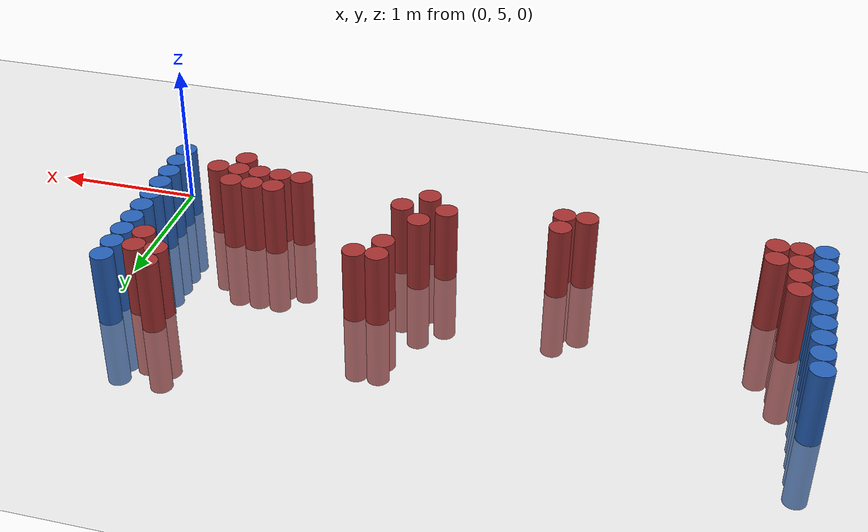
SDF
<sdf version="1.6">
 <world name="default">
  <model name="ground_plane">
   <static>1</static>
   <link name="link">
    <collision name="collision">
     <geometry><plane><normal>0 0 1</normal><size>100 100</size></plane></geometry>
     <surface><friction><ode><mu>100</mu><mu2>50</mu2></ode></friction></surface>
    </collision>
    <visual name="visual">
     <cast_shadows>0</cast_shadows>
     <geometry><plane><normal>0 0 1</normal><size>100 100</size></plane></geometry>
     <material>
      <script><uri>file://media/materials/scripts/gazebo.material</uri><name>Gazebo/Grey</name></script>
     </material>
    </visual>
   </link>
  </model>
  <model name="unit_cylinder_97">
   <static>1</static>
   <pose>-4.425000 5.325000 0.000000 0.000000 0.000000 0.000000</pose>
   <link name="link">
    <inertial>
     <mass>1</mass>
     <inertia><ixx>0.145833</ixx><ixy>0</ixy><ixz>0</ixz><iyy>0.145833</iyy><iyz>0</iyz><izz>0.125</izz></inertia>
    </inertial>
    <collision name="collision">
     <geometry><cylinder><radius>0.075000</radius><length>1</length></cylinder></geometry>
    </collision>
    <visual name="visual">
     <geometry><cylinder><radius>0.075000</radius><length>1</length></cylinder></geometry>
     <material>
      <ambient>0.152000 0.379000 0.720000 1</ambient>
      <diffuse>0.152000 0.379000 0.720000 1</diffuse>
     </material>
     <material>
      <script><name>Gazebo/Grey</name><uri>file://media/materials/scripts/gazebo.material</uri></script>
     </material>
    </visual>
   </link>
  </model>
  <model name="unit_cylinder_98">
   <static>1</static>
   <pose>-4.425000 5.475000 0.000000 0.000000 0.000000 0.000000</pose>
   <link name="link">
    <inertial>
     <mass>1</mass>
     <inertia><ixx>0.145833</ixx><ixy>0</ixy><ixz>0</ixz><iyy>0.145833</iyy><iyz>0</iyz><izz>0.125</izz></inertia>
    </inertial>
    <collision name="collision">
     <geometry><cylinder><radius>0.075000</radius><length>1</length></cylinder></geometry>
    </collision>
    <visual name="visual">
     <geometry><cylinder><radius>0.075000</radius><length>1</length></cylinder></geometry>
     <material>
      <ambient>0.152000 0.379000 0.720000 1</ambient>
      <diffuse>0.152000 0.379000 0.720000 1</diffuse>
     </material>
     <material>
      <script><name>Gazebo/Grey</name><uri>file://media/materials/scripts/gazebo.material</uri></script>
     </material>
    </visual>
   </link>
  </model>
  <model name="unit_cylinder_99">
   <static>1</static>
   <pose>-4.425000 5.625000 0.000000 0.000000 0.000000 0.000000</pose>
   <link name="link">
    <inertial>
     <mass>1</mass>
     <inertia><ixx>0.145833</ixx><ixy>0</ixy><ixz>0</ixz><iyy>0.145833</iyy><iyz>0</iyz><izz>0.125</izz></inertia>
    </inertial>
    <collision name="collision">
     <geometry><cylinder><radius>0.075000</radius><length>1</length></cylinder></geometry>
    </collision>
    <visual name="visual">
     <geometry><cylinder><radius>0.075000</radius><length>1</length></cylinder></geometry>
     <material>
      <ambient>0.152000 0.379000 0.720000 1</ambient>
      <diffuse>0.152000 0.379000 0.720000 1</diffuse>
     </material>
     <material>
      <script><name>Gazebo/Grey</name><uri>file://media/materials/scripts/gazebo.material</uri></script>
     </material>
    </visual>
   </link>
  </model>
  <model name="unit_cylinder_100">
   <static>1</static>
   <pose>-4.425000 5.775000 0.000000 0.000000 0.000000 0.000000</pose>
   <link name="link">
    <inertial>
     <mass>1</mass>
     <inertia><ixx>0.145833</ixx><ixy>0</ixy><ixz>0</ixz><iyy>0.145833</iyy><iyz>0</iyz><izz>0.125</izz></inertia>
    </inertial>
    <collision name="collision">
     <geometry><cylinder><radius>0.075000</radius><length>1</length></cylinder></geometry>
    </collision>
    <visual name="visual">
     <geometry><cylinder><radius>0.075000</radius><length>1</length></cylinder></geometry>
     <material>
      <ambient>0.152000 0.379000 0.720000 1</ambient>
      <diffuse>0.152000 0.379000 0.720000 1</diffuse>
     </material>
     <material>
      <script><name>Gazebo/Grey</name><uri>file://media/materials/scripts/gazebo.material</uri></script>
     </material>
    </visual>
   </link>
  </model>
  <model name="unit_cylinder_101">
   <static>1</static>
   <pose>-4.425000 5.925000 0.000000 0.000000 0.000000 0.000000</pose>
   <link name="link">
    <inertial>
     <mass>1</mass>
     <inertia><ixx>0.145833</ixx><ixy>0</ixy><ixz>0</ixz><iyy>0.145833</iyy><iyz>0</iyz><izz>0.125</izz></inertia>
    </inertial>
    <collision name="collision">
     <geometry><cylinder><radius>0.075000</radius><length>1</length></cylinder></geometry>
    </collision>
    <visual name="visual">
     <geometry><cylinder><radius>0.075000</radius><length>1</length></cylinder></geometry>
     <material>
      <ambient>0.152000 0.379000 0.720000 1</ambient>
      <diffuse>0.152000 0.379000 0.720000 1</diffuse>
     </material>
     <material>
      <script><name>Gazebo/Grey</name><uri>file://media/materials/scripts/gazebo.material</uri></script>
     </material>
    </visual>
   </link>
  </model>
  <model name="unit_cylinder_102">
   <static>1</static>
   <pose>-4.425000 6.075000 0.000000 0.000000 0.000000 0.000000</pose>
   <link name="link">
    <inertial>
     <mass>1</mass>
     <inertia><ixx>0.145833</ixx><ixy>0</ixy><ixz>0</ixz><iyy>0.145833</iyy><iyz>0</iyz><izz>0.125</izz></inertia>
    </inertial>
    <collision name="collision">
     <geometry><cylinder><radius>0.075000</radius><length>1</length></cylinder></geometry>
    </collision>
    <visual name="visual">
     <geometry><cylinder><radius>0.075000</radius><length>1</length></cylinder></geometry>
     <material>
      <ambient>0.152000 0.379000 0.720000 1</ambient>
      <diffuse>0.152000 0.379000 0.720000 1</diffuse>
     </material>
     <material>
      <script><name>Gazebo/Grey</name><uri>file://media/materials/scripts/gazebo.material</uri></script>
     </material>
    </visual>
   </link>
  </model>
  <model name="unit_cylinder_103">
   <static>1</static>
   <pose>-4.425000 6.225000 0.000000 0.000000 0.000000 0.000000</pose>
   <link name="link">
    <inertial>
     <mass>1</mass>
     <inertia><ixx>0.145833</ixx><ixy>0</ixy><ixz>0</ixz><iyy>0.145833</iyy><iyz>0</iyz><izz>0.125</izz></inertia>
    </inertial>
    <collision name="collision">
     <geometry><cylinder><radius>0.075000</radius><length>1</length></cylinder></geometry>
    </collision>
    <visual name="visual">
     <geometry><cylinder><radius>0.075000</radius><length>1</length></cylinder></geometry>
     <material>
      <ambient>0.152000 0.379000 0.720000 1</ambient>
      <diffuse>0.152000 0.379000 0.720000 1</diffuse>
     </material>
     <material>
      <script><name>Gazebo/Grey</name><uri>file://media/materials/scripts/gazebo.material</uri></script>
     </material>
    </visual>
   </link>
  </model>
  <model name="unit_cylinder_104">
   <static>1</static>
   <pose>-4.425000 6.375000 0.000000 0.000000 0.000000 0.000000</pose>
   <link name="link">
    <inertial>
     <mass>1</mass>
     <inertia><ixx>0.145833</ixx><ixy>0</ixy><ixz>0</ixz><iyy>0.145833</iyy><iyz>0</iyz><izz>0.125</izz></inertia>
    </inertial>
    <collision name="collision">
     <geometry><cylinder><radius>0.075000</radius><length>1</length></cylinder></geometry>
    </collision>
    <visual name="visual">
     <geometry><cylinder><radius>0.075000</radius><length>1</length></cylinder></geometry>
     <material>
      <ambient>0.152000 0.379000 0.720000 1</ambient>
      <diffuse>0.152000 0.379000 0.720000 1</diffuse>
     </material>
     <material>
      <script><name>Gazebo/Grey</name><uri>file://media/materials/scripts/gazebo.material</uri></script>
     </material>
    </visual>
   </link>
  </model>
  <model name="unit_cylinder_105">
   <static>1</static>
   <pose>-4.425000 6.525000 0.000000 0.000000 0.000000 0.000000</pose>
   <link name="link">
    <inertial>
     <mass>1</mass>
     <inertia><ixx>0.145833</ixx><ixy>0</ixy><ixz>0</ixz><iyy>0.145833</iyy><iyz>0</iyz><izz>0.125</izz></inertia>
    </inertial>
    <collision name="collision">
     <geometry><cylinder><radius>0.075000</radius><length>1</length></cylinder></geometry>
    </collision>
    <visual name="visual">
     <geometry><cylinder><radius>0.075000</radius><length>1</length></cylinder></geometry>
     <material>
      <ambient>0.152000 0.379000 0.720000 1</ambient>
      <diffuse>0.152000 0.379000 0.720000 1</diffuse>
     </material>
     <material>
      <script><name>Gazebo/Grey</name><uri>file://media/materials/scripts/gazebo.material</uri></script>
     </material>
    </visual>
   </link>
  </model>
  <model name="unit_cylinder_126">
   <static>1</static>
   <pose>-4.275000 5.325000 0.000000 0.000000 0.000000 0.000000</pose>
   <link name="link">
    <inertial>
     <mass>1</mass>
     <inertia><ixx>0.145833</ixx><ixy>0</ixy><ixz>0</ixz><iyy>0.145833</iyy><iyz>0</iyz><izz>0.125</izz></inertia>
    </inertial>
    <collision name="collision">
     <geometry><cylinder><radius>0.075000</radius><length>1</length></cylinder></geometry>
    </collision>
    <visual name="visual">
     <geometry><cylinder><radius>0.075000</radius><length>1</length></cylinder></geometry>
     <material>
      <ambient>0.648000 0.192000 0.192000 1</ambient>
      <diffuse>0.648000 0.192000 0.192000 1</diffuse>
     </material>
     <material>
      <script><name>Gazebo/Grey</name><uri>file://media/materials/scripts/gazebo.material</uri></script>
     </material>
    </visual>
   </link>
  </model>
  <model name="unit_cylinder_127">
   <static>1</static>
   <pose>-4.275000 5.475000 0.000000 0.000000 0.000000 0.000000</pose>
   <link name="link">
    <inertial>
     <mass>1</mass>
     <inertia><ixx>0.145833</ixx><ixy>0</ixy><ixz>0</ixz><iyy>0.145833</iyy><iyz>0</iyz><izz>0.125</izz></inertia>
    </inertial>
    <collision name="collision">
     <geometry><cylinder><radius>0.075000</radius><length>1</length></cylinder></geometry>
    </collision>
    <visual name="visual">
     <geometry><cylinder><radius>0.075000</radius><length>1</length></cylinder></geometry>
     <material>
      <ambient>0.648000 0.192000 0.192000 1</ambient>
      <diffuse>0.648000 0.192000 0.192000 1</diffuse>
     </material>
     <material>
      <script><name>Gazebo/Grey</name><uri>file://media/materials/scripts/gazebo.material</uri></script>
     </material>
    </visual>
   </link>
  </model>
  <model name="unit_cylinder_128">
   <static>1</static>
   <pose>-4.275000 5.625000 0.000000 0.000000 0.000000 0.000000</pose>
   <link name="link">
    <inertial>
     <mass>1</mass>
     <inertia><ixx>0.145833</ixx><ixy>0</ixy><ixz>0</ixz><iyy>0.145833</iyy><iyz>0</iyz><izz>0.125</izz></inertia>
    </inertial>
    <collision name="collision">
     <geometry><cylinder><radius>0.075000</radius><length>1</length></cylinder></geometry>
    </collision>
    <visual name="visual">
     <geometry><cylinder><radius>0.075000</radius><length>1</length></cylinder></geometry>
     <material>
      <ambient>0.648000 0.192000 0.192000 1</ambient>
      <diffuse>0.648000 0.192000 0.192000 1</diffuse>
     </material>
     <material>
      <script><name>Gazebo/Grey</name><uri>file://media/materials/scripts/gazebo.material</uri></script>
     </material>
    </visual>
   </link>
  </model>
  <model name="unit_cylinder_129">
   <static>1</static>
   <pose>-4.275000 5.775000 0.000000 0.000000 0.000000 0.000000</pose>
   <link name="link">
    <inertial>
     <mass>1</mass>
     <inertia><ixx>0.145833</ixx><ixy>0</ixy><ixz>0</ixz><iyy>0.145833</iyy><iyz>0</iyz><izz>0.125</izz></inertia>
    </inertial>
    <collision name="collision">
     <geometry><cylinder><radius>0.075000</radius><length>1</length></cylinder></geometry>
    </collision>
    <visual name="visual">
     <geometry><cylinder><radius>0.075000</radius><length>1</length></cylinder></geometry>
     <material>
      <ambient>0.648000 0.192000 0.192000 1</ambient>
      <diffuse>0.648000 0.192000 0.192000 1</diffuse>
     </material>
     <material>
      <script><name>Gazebo/Grey</name><uri>file://media/materials/scripts/gazebo.material</uri></script>
     </material>
    </visual>
   </link>
  </model>
  <model name="unit_cylinder_138">
   <static>1</static>
   <pose>-4.125000 5.325000 0.000000 0.000000 0.000000 0.000000</pose>
   <link name="link">
    <inertial>
     <mass>1</mass>
     <inertia><ixx>0.145833</ixx><ixy>0</ixy><ixz>0</ixz><iyy>0.145833</iyy><iyz>0</iyz><izz>0.125</izz></inertia>
    </inertial>
    <collision name="collision">
     <geometry><cylinder><radius>0.075000</radius><length>1</length></cylinder></geometry>
    </collision>
    <visual name="visual">
     <geometry><cylinder><radius>0.075000</radius><length>1</length></cylinder></geometry>
     <material>
      <ambient>0.648000 0.192000 0.192000 1</ambient>
      <diffuse>0.648000 0.192000 0.192000 1</diffuse>
     </material>
     <material>
      <script><name>Gazebo/Grey</name><uri>file://media/materials/scripts/gazebo.material</uri></script>
     </material>
    </visual>
   </link>
  </model>
  <model name="unit_cylinder_139">
   <static>1</static>
   <pose>-4.125000 5.475000 0.000000 0.000000 0.000000 0.000000</pose>
   <link name="link">
    <inertial>
     <mass>1</mass>
     <inertia><ixx>0.145833</ixx><ixy>0</ixy><ixz>0</ixz><iyy>0.145833</iyy><iyz>0</iyz><izz>0.125</izz></inertia>
    </inertial>
    <collision name="collision">
     <geometry><cylinder><radius>0.075000</radius><length>1</length></cylinder></geometry>
    </collision>
    <visual name="visual">
     <geometry><cylinder><radius>0.075000</radius><length>1</length></cylinder></geometry>
     <material>
      <ambient>0.648000 0.192000 0.192000 1</ambient>
      <diffuse>0.648000 0.192000 0.192000 1</diffuse>
     </material>
     <material>
      <script><name>Gazebo/Grey</name><uri>file://media/materials/scripts/gazebo.material</uri></script>
     </material>
    </visual>
   </link>
  </model>
  <model name="unit_cylinder_162">
   <static>1</static>
   <pose>-2.925000 5.325000 0.000000 0.000000 0.000000 0.000000</pose>
   <link name="link">
    <inertial>
     <mass>1</mass>
     <inertia><ixx>0.145833</ixx><ixy>0</ixy><ixz>0</ixz><iyy>0.145833</iyy><iyz>0</iyz><izz>0.125</izz></inertia>
    </inertial>
    <collision name="collision">
     <geometry><cylinder><radius>0.075000</radius><length>1</length></cylinder></geometry>
    </collision>
    <visual name="visual">
     <geometry><cylinder><radius>0.075000</radius><length>1</length></cylinder></geometry>
     <material>
      <ambient>0.648000 0.192000 0.192000 1</ambient>
      <diffuse>0.648000 0.192000 0.192000 1</diffuse>
     </material>
     <material>
      <script><name>Gazebo/Grey</name><uri>file://media/materials/scripts/gazebo.material</uri></script>
     </material>
    </visual>
   </link>
  </model>
  <model name="unit_cylinder_163">
   <static>1</static>
   <pose>-2.775000 5.325000 0.000000 0.000000 0.000000 0.000000</pose>
   <link name="link">
    <inertial>
     <mass>1</mass>
     <inertia><ixx>0.145833</ixx><ixy>0</ixy><ixz>0</ixz><iyy>0.145833</iyy><iyz>0</iyz><izz>0.125</izz></inertia>
    </inertial>
    <collision name="collision">
     <geometry><cylinder><radius>0.075000</radius><length>1</length></cylinder></geometry>
    </collision>
    <visual name="visual">
     <geometry><cylinder><radius>0.075000</radius><length>1</length></cylinder></geometry>
     <material>
      <ambient>0.648000 0.192000 0.192000 1</ambient>
      <diffuse>0.648000 0.192000 0.192000 1</diffuse>
     </material>
     <material>
      <script><name>Gazebo/Grey</name><uri>file://media/materials/scripts/gazebo.material</uri></script>
     </material>
    </visual>
   </link>
  </model>
  <model name="unit_cylinder_164">
   <static>1</static>
   <pose>-2.775000 5.475000 0.000000 0.000000 0.000000 0.000000</pose>
   <link name="link">
    <inertial>
     <mass>1</mass>
     <inertia><ixx>0.145833</ixx><ixy>0</ixy><ixz>0</ixz><iyy>0.145833</iyy><iyz>0</iyz><izz>0.125</izz></inertia>
    </inertial>
    <collision name="collision">
     <geometry><cylinder><radius>0.075000</radius><length>1</length></cylinder></geometry>
    </collision>
    <visual name="visual">
     <geometry><cylinder><radius>0.075000</radius><length>1</length></cylinder></geometry>
     <material>
      <ambient>0.648000 0.192000 0.192000 1</ambient>
      <diffuse>0.648000 0.192000 0.192000 1</diffuse>
     </material>
     <material>
      <script><name>Gazebo/Grey</name><uri>file://media/materials/scripts/gazebo.material</uri></script>
     </material>
    </visual>
   </link>
  </model>
  <model name="unit_cylinder_168">
   <static>1</static>
   <pose>-2.025000 5.475000 0.000000 0.000000 0.000000 0.000000</pose>
   <link name="link">
    <inertial>
     <mass>1</mass>
     <inertia><ixx>0.145833</ixx><ixy>0</ixy><ixz>0</ixz><iyy>0.145833</iyy><iyz>0</iyz><izz>0.125</izz></inertia>
    </inertial>
    <collision name="collision">
     <geometry><cylinder><radius>0.075000</radius><length>1</length></cylinder></geometry>
    </collision>
    <visual name="visual">
     <geometry><cylinder><radius>0.075000</radius><length>1</length></cylinder></geometry>
     <material>
      <ambient>0.648000 0.192000 0.192000 1</ambient>
      <diffuse>0.648000 0.192000 0.192000 1</diffuse>
     </material>
     <material>
      <script><name>Gazebo/Grey</name><uri>file://media/materials/scripts/gazebo.material</uri></script>
     </material>
    </visual>
   </link>
  </model>
  <model name="unit_cylinder_171">
   <static>1</static>
   <pose>-1.875000 5.325000 0.000000 0.000000 0.000000 0.000000</pose>
   <link name="link">
    <inertial>
     <mass>1</mass>
     <inertia><ixx>0.145833</ixx><ixy>0</ixy><ixz>0</ixz><iyy>0.145833</iyy><iyz>0</iyz><izz>0.125</izz></inertia>
    </inertial>
    <collision name="collision">
     <geometry><cylinder><radius>0.075000</radius><length>1</length></cylinder></geometry>
    </collision>
    <visual name="visual">
     <geometry><cylinder><radius>0.075000</radius><length>1</length></cylinder></geometry>
     <material>
      <ambient>0.648000 0.192000 0.192000 1</ambient>
      <diffuse>0.648000 0.192000 0.192000 1</diffuse>
     </material>
     <material>
      <script><name>Gazebo/Grey</name><uri>file://media/materials/scripts/gazebo.material</uri></script>
     </material>
    </visual>
   </link>
  </model>
  <model name="unit_cylinder_172">
   <static>1</static>
   <pose>-1.875000 5.625000 0.000000 0.000000 0.000000 0.000000</pose>
   <link name="link">
    <inertial>
     <mass>1</mass>
     <inertia><ixx>0.145833</ixx><ixy>0</ixy><ixz>0</ixz><iyy>0.145833</iyy><iyz>0</iyz><izz>0.125</izz></inertia>
    </inertial>
    <collision name="collision">
     <geometry><cylinder><radius>0.075000</radius><length>1</length></cylinder></geometry>
    </collision>
    <visual name="visual">
     <geometry><cylinder><radius>0.075000</radius><length>1</length></cylinder></geometry>
     <material>
      <ambient>0.648000 0.192000 0.192000 1</ambient>
      <diffuse>0.648000 0.192000 0.192000 1</diffuse>
     </material>
     <material>
      <script><name>Gazebo/Grey</name><uri>file://media/materials/scripts/gazebo.material</uri></script>
     </material>
    </visual>
   </link>
  </model>
  <model name="unit_cylinder_179">
   <static>1</static>
   <pose>-1.725000 5.475000 0.000000 0.000000 0.000000 0.000000</pose>
   <link name="link">
    <inertial>
     <mass>1</mass>
     <inertia><ixx>0.145833</ixx><ixy>0</ixy><ixz>0</ixz><iyy>0.145833</iyy><iyz>0</iyz><izz>0.125</izz></inertia>
    </inertial>
    <collision name="collision">
     <geometry><cylinder><radius>0.075000</radius><length>1</length></cylinder></geometry>
    </collision>
    <visual name="visual">
     <geometry><cylinder><radius>0.075000</radius><length>1</length></cylinder></geometry>
     <material>
      <ambient>0.648000 0.192000 0.192000 1</ambient>
      <diffuse>0.648000 0.192000 0.192000 1</diffuse>
     </material>
     <material>
      <script><name>Gazebo/Grey</name><uri>file://media/materials/scripts/gazebo.material</uri></script>
     </material>
    </visual>
   </link>
  </model>
  <model name="unit_cylinder_180">
   <static>1</static>
   <pose>-1.725000 5.925000 0.000000 0.000000 0.000000 0.000000</pose>
   <link name="link">
    <inertial>
     <mass>1</mass>
     <inertia><ixx>0.145833</ixx><ixy>0</ixy><ixz>0</ixz><iyy>0.145833</iyy><iyz>0</iyz><izz>0.125</izz></inertia>
    </inertial>
    <collision name="collision">
     <geometry><cylinder><radius>0.075000</radius><length>1</length></cylinder></geometry>
    </collision>
    <visual name="visual">
     <geometry><cylinder><radius>0.075000</radius><length>1</length></cylinder></geometry>
     <material>
      <ambient>0.648000 0.192000 0.192000 1</ambient>
      <diffuse>0.648000 0.192000 0.192000 1</diffuse>
     </material>
     <material>
      <script><name>Gazebo/Grey</name><uri>file://media/materials/scripts/gazebo.material</uri></script>
     </material>
    </visual>
   </link>
  </model>
  <model name="unit_cylinder_181">
   <static>1</static>
   <pose>-1.725000 6.075000 0.000000 0.000000 0.000000 0.000000</pose>
   <link name="link">
    <inertial>
     <mass>1</mass>
     <inertia><ixx>0.145833</ixx><ixy>0</ixy><ixz>0</ixz><iyy>0.145833</iyy><iyz>0</iyz><izz>0.125</izz></inertia>
    </inertial>
    <collision name="collision">
     <geometry><cylinder><radius>0.075000</radius><length>1</length></cylinder></geometry>
    </collision>
    <visual name="visual">
     <geometry><cylinder><radius>0.075000</radius><length>1</length></cylinder></geometry>
     <material>
      <ambient>0.648000 0.192000 0.192000 1</ambient>
      <diffuse>0.648000 0.192000 0.192000 1</diffuse>
     </material>
     <material>
      <script><name>Gazebo/Grey</name><uri>file://media/materials/scripts/gazebo.material</uri></script>
     </material>
    </visual>
   </link>
  </model>
  <model name="unit_cylinder_190">
   <static>1</static>
   <pose>-1.575000 6.075000 0.000000 0.000000 0.000000 0.000000</pose>
   <link name="link">
    <inertial>
     <mass>1</mass>
     <inertia><ixx>0.145833</ixx><ixy>0</ixy><ixz>0</ixz><iyy>0.145833</iyy><iyz>0</iyz><izz>0.125</izz></inertia>
    </inertial>
    <collision name="collision">
     <geometry><cylinder><radius>0.075000</radius><length>1</length></cylinder></geometry>
    </collision>
    <visual name="visual">
     <geometry><cylinder><radius>0.075000</radius><length>1</length></cylinder></geometry>
     <material>
      <ambient>0.648000 0.192000 0.192000 1</ambient>
      <diffuse>0.648000 0.192000 0.192000 1</diffuse>
     </material>
     <material>
      <script><name>Gazebo/Grey</name><uri>file://media/materials/scripts/gazebo.material</uri></script>
     </material>
    </visual>
   </link>
  </model>
  <model name="unit_cylinder_212">
   <static>1</static>
   <pose>-0.975000 5.325000 0.000000 0.000000 0.000000 0.000000</pose>
   <link name="link">
    <inertial>
     <mass>1</mass>
     <inertia><ixx>0.145833</ixx><ixy>0</ixy><ixz>0</ixz><iyy>0.145833</iyy><iyz>0</iyz><izz>0.125</izz></inertia>
    </inertial>
    <collision name="collision">
     <geometry><cylinder><radius>0.075000</radius><length>1</length></cylinder></geometry>
    </collision>
    <visual name="visual">
     <geometry><cylinder><radius>0.075000</radius><length>1</length></cylinder></geometry>
     <material>
      <ambient>0.648000 0.192000 0.192000 1</ambient>
      <diffuse>0.648000 0.192000 0.192000 1</diffuse>
     </material>
     <material>
      <script><name>Gazebo/Grey</name><uri>file://media/materials/scripts/gazebo.material</uri></script>
     </material>
    </visual>
   </link>
  </model>
  <model name="unit_cylinder_215">
   <static>1</static>
   <pose>-0.825000 5.325000 0.000000 0.000000 0.000000 0.000000</pose>
   <link name="link">
    <inertial>
     <mass>1</mass>
     <inertia><ixx>0.145833</ixx><ixy>0</ixy><ixz>0</ixz><iyy>0.145833</iyy><iyz>0</iyz><izz>0.125</izz></inertia>
    </inertial>
    <collision name="collision">
     <geometry><cylinder><radius>0.075000</radius><length>1</length></cylinder></geometry>
    </collision>
    <visual name="visual">
     <geometry><cylinder><radius>0.075000</radius><length>1</length></cylinder></geometry>
     <material>
      <ambient>0.648000 0.192000 0.192000 1</ambient>
      <diffuse>0.648000 0.192000 0.192000 1</diffuse>
     </material>
     <material>
      <script><name>Gazebo/Grey</name><uri>file://media/materials/scripts/gazebo.material</uri></script>
     </material>
    </visual>
   </link>
  </model>
  <model name="unit_cylinder_216">
   <static>1</static>
   <pose>-0.825000 5.475000 0.000000 0.000000 0.000000 0.000000</pose>
   <link name="link">
    <inertial>
     <mass>1</mass>
     <inertia><ixx>0.145833</ixx><ixy>0</ixy><ixz>0</ixz><iyy>0.145833</iyy><iyz>0</iyz><izz>0.125</izz></inertia>
    </inertial>
    <collision name="collision">
     <geometry><cylinder><radius>0.075000</radius><length>1</length></cylinder></geometry>
    </collision>
    <visual name="visual">
     <geometry><cylinder><radius>0.075000</radius><length>1</length></cylinder></geometry>
     <material>
      <ambient>0.648000 0.192000 0.192000 1</ambient>
      <diffuse>0.648000 0.192000 0.192000 1</diffuse>
     </material>
     <material>
      <script><name>Gazebo/Grey</name><uri>file://media/materials/scripts/gazebo.material</uri></script>
     </material>
    </visual>
   </link>
  </model>
  <model name="unit_cylinder_220">
   <static>1</static>
   <pose>-0.675000 5.325000 0.000000 0.000000 0.000000 0.000000</pose>
   <link name="link">
    <inertial>
     <mass>1</mass>
     <inertia><ixx>0.145833</ixx><ixy>0</ixy><ixz>0</ixz><iyy>0.145833</iyy><iyz>0</iyz><izz>0.125</izz></inertia>
    </inertial>
    <collision name="collision">
     <geometry><cylinder><radius>0.075000</radius><length>1</length></cylinder></geometry>
    </collision>
    <visual name="visual">
     <geometry><cylinder><radius>0.075000</radius><length>1</length></cylinder></geometry>
     <material>
      <ambient>0.648000 0.192000 0.192000 1</ambient>
      <diffuse>0.648000 0.192000 0.192000 1</diffuse>
     </material>
     <material>
      <script><name>Gazebo/Grey</name><uri>file://media/materials/scripts/gazebo.material</uri></script>
     </material>
    </visual>
   </link>
  </model>
  <model name="unit_cylinder_221">
   <static>1</static>
   <pose>-0.675000 5.475000 0.000000 0.000000 0.000000 0.000000</pose>
   <link name="link">
    <inertial>
     <mass>1</mass>
     <inertia><ixx>0.145833</ixx><ixy>0</ixy><ixz>0</ixz><iyy>0.145833</iyy><iyz>0</iyz><izz>0.125</izz></inertia>
    </inertial>
    <collision name="collision">
     <geometry><cylinder><radius>0.075000</radius><length>1</length></cylinder></geometry>
    </collision>
    <visual name="visual">
     <geometry><cylinder><radius>0.075000</radius><length>1</length></cylinder></geometry>
     <material>
      <ambient>0.648000 0.192000 0.192000 1</ambient>
      <diffuse>0.648000 0.192000 0.192000 1</diffuse>
     </material>
     <material>
      <script><name>Gazebo/Grey</name><uri>file://media/materials/scripts/gazebo.material</uri></script>
     </material>
    </visual>
   </link>
  </model>
  <model name="unit_cylinder_229">
   <static>1</static>
   <pose>-0.525000 5.175000 0.000000 0.000000 0.000000 0.000000</pose>
   <link name="link">
    <inertial>
     <mass>1</mass>
     <inertia><ixx>0.145833</ixx><ixy>0</ixy><ixz>0</ixz><iyy>0.145833</iyy><iyz>0</iyz><izz>0.125</izz></inertia>
    </inertial>
    <collision name="collision">
     <geometry><cylinder><radius>0.075000</radius><length>1</length></cylinder></geometry>
    </collision>
    <visual name="visual">
     <geometry><cylinder><radius>0.075000</radius><length>1</length></cylinder></geometry>
     <material>
      <ambient>0.648000 0.192000 0.192000 1</ambient>
      <diffuse>0.648000 0.192000 0.192000 1</diffuse>
     </material>
     <material>
      <script><name>Gazebo/Grey</name><uri>file://media/materials/scripts/gazebo.material</uri></script>
     </material>
    </visual>
   </link>
  </model>
  <model name="unit_cylinder_230">
   <static>1</static>
   <pose>-0.525000 5.325000 0.000000 0.000000 0.000000 0.000000</pose>
   <link name="link">
    <inertial>
     <mass>1</mass>
     <inertia><ixx>0.145833</ixx><ixy>0</ixy><ixz>0</ixz><iyy>0.145833</iyy><iyz>0</iyz><izz>0.125</izz></inertia>
    </inertial>
    <collision name="collision">
     <geometry><cylinder><radius>0.075000</radius><length>1</length></cylinder></geometry>
    </collision>
    <visual name="visual">
     <geometry><cylinder><radius>0.075000</radius><length>1</length></cylinder></geometry>
     <material>
      <ambient>0.648000 0.192000 0.192000 1</ambient>
      <diffuse>0.648000 0.192000 0.192000 1</diffuse>
     </material>
     <material>
      <script><name>Gazebo/Grey</name><uri>file://media/materials/scripts/gazebo.material</uri></script>
     </material>
    </visual>
   </link>
  </model>
  <model name="unit_cylinder_231">
   <static>1</static>
   <pose>-0.525000 5.475000 0.000000 0.000000 0.000000 0.000000</pose>
   <link name="link">
    <inertial>
     <mass>1</mass>
     <inertia><ixx>0.145833</ixx><ixy>0</ixy><ixz>0</ixz><iyy>0.145833</iyy><iyz>0</iyz><izz>0.125</izz></inertia>
    </inertial>
    <collision name="collision">
     <geometry><cylinder><radius>0.075000</radius><length>1</length></cylinder></geometry>
    </collision>
    <visual name="visual">
     <geometry><cylinder><radius>0.075000</radius><length>1</length></cylinder></geometry>
     <material>
      <ambient>0.648000 0.192000 0.192000 1</ambient>
      <diffuse>0.648000 0.192000 0.192000 1</diffuse>
     </material>
     <material>
      <script><name>Gazebo/Grey</name><uri>file://media/materials/scripts/gazebo.material</uri></script>
     </material>
    </visual>
   </link>
  </model>
  <model name="unit_cylinder_240">
   <static>1</static>
   <pose>-0.375000 5.325000 0.000000 0.000000 0.000000 0.000000</pose>
   <link name="link">
    <inertial>
     <mass>1</mass>
     <inertia><ixx>0.145833</ixx><ixy>0</ixy><ixz>0</ixz><iyy>0.145833</iyy><iyz>0</iyz><izz>0.125</izz></inertia>
    </inertial>
    <collision name="collision">
     <geometry><cylinder><radius>0.075000</radius><length>1</length></cylinder></geometry>
    </collision>
    <visual name="visual">
     <geometry><cylinder><radius>0.075000</radius><length>1</length></cylinder></geometry>
     <material>
      <ambient>0.648000 0.192000 0.192000 1</ambient>
      <diffuse>0.648000 0.192000 0.192000 1</diffuse>
     </material>
     <material>
      <script><name>Gazebo/Grey</name><uri>file://media/materials/scripts/gazebo.material</uri></script>
     </material>
    </visual>
   </link>
  </model>
  <model name="unit_cylinder_241">
   <static>1</static>
   <pose>-0.375000 6.375000 0.000000 0.000000 0.000000 0.000000</pose>
   <link name="link">
    <inertial>
     <mass>1</mass>
     <inertia><ixx>0.145833</ixx><ixy>0</ixy><ixz>0</ixz><iyy>0.145833</iyy><iyz>0</iyz><izz>0.125</izz></inertia>
    </inertial>
    <collision name="collision">
     <geometry><cylinder><radius>0.075000</radius><length>1</length></cylinder></geometry>
    </collision>
    <visual name="visual">
     <geometry><cylinder><radius>0.075000</radius><length>1</length></cylinder></geometry>
     <material>
      <ambient>0.648000 0.192000 0.192000 1</ambient>
      <diffuse>0.648000 0.192000 0.192000 1</diffuse>
     </material>
     <material>
      <script><name>Gazebo/Grey</name><uri>file://media/materials/scripts/gazebo.material</uri></script>
     </material>
    </visual>
   </link>
  </model>
  <model name="unit_cylinder_242">
   <static>1</static>
   <pose>-0.375000 6.525000 0.000000 0.000000 0.000000 0.000000</pose>
   <link name="link">
    <inertial>
     <mass>1</mass>
     <inertia><ixx>0.145833</ixx><ixy>0</ixy><ixz>0</ixz><iyy>0.145833</iyy><iyz>0</iyz><izz>0.125</izz></inertia>
    </inertial>
    <collision name="collision">
     <geometry><cylinder><radius>0.075000</radius><length>1</length></cylinder></geometry>
    </collision>
    <visual name="visual">
     <geometry><cylinder><radius>0.075000</radius><length>1</length></cylinder></geometry>
     <material>
      <ambient>0.648000 0.192000 0.192000 1</ambient>
      <diffuse>0.648000 0.192000 0.192000 1</diffuse>
     </material>
     <material>
      <script><name>Gazebo/Grey</name><uri>file://media/materials/scripts/gazebo.material</uri></script>
     </material>
    </visual>
   </link>
  </model>
  <model name="unit_cylinder_254">
   <static>1</static>
   <pose>-0.225000 6.225000 0.000000 0.000000 0.000000 0.000000</pose>
   <link name="link">
    <inertial>
     <mass>1</mass>
     <inertia><ixx>0.145833</ixx><ixy>0</ixy><ixz>0</ixz><iyy>0.145833</iyy><iyz>0</iyz><izz>0.125</izz></inertia>
    </inertial>
    <collision name="collision">
     <geometry><cylinder><radius>0.075000</radius><length>1</length></cylinder></geometry>
    </collision>
    <visual name="visual">
     <geometry><cylinder><radius>0.075000</radius><length>1</length></cylinder></geometry>
     <material>
      <ambient>0.648000 0.192000 0.192000 1</ambient>
      <diffuse>0.648000 0.192000 0.192000 1</diffuse>
     </material>
     <material>
      <script><name>Gazebo/Grey</name><uri>file://media/materials/scripts/gazebo.material</uri></script>
     </material>
    </visual>
   </link>
  </model>
  <model name="unit_cylinder_255">
   <static>1</static>
   <pose>-0.225000 6.375000 0.000000 0.000000 0.000000 0.000000</pose>
   <link name="link">
    <inertial>
     <mass>1</mass>
     <inertia><ixx>0.145833</ixx><ixy>0</ixy><ixz>0</ixz><iyy>0.145833</iyy><iyz>0</iyz><izz>0.125</izz></inertia>
    </inertial>
    <collision name="collision">
     <geometry><cylinder><radius>0.075000</radius><length>1</length></cylinder></geometry>
    </collision>
    <visual name="visual">
     <geometry><cylinder><radius>0.075000</radius><length>1</length></cylinder></geometry>
     <material>
      <ambient>0.648000 0.192000 0.192000 1</ambient>
      <diffuse>0.648000 0.192000 0.192000 1</diffuse>
     </material>
     <material>
      <script><name>Gazebo/Grey</name><uri>file://media/materials/scripts/gazebo.material</uri></script>
     </material>
    </visual>
   </link>
  </model>
  <model name="unit_cylinder_262">
   <static>1</static>
   <pose>-0.075000 5.175000 0.000000 0.000000 0.000000 0.000000</pose>
   <link name="link">
    <inertial>
     <mass>1</mass>
     <inertia><ixx>0.145833</ixx><ixy>0</ixy><ixz>0</ixz><iyy>0.145833</iyy><iyz>0</iyz><izz>0.125</izz></inertia>
    </inertial>
    <collision name="collision">
     <geometry><cylinder><radius>0.075000</radius><length>1</length></cylinder></geometry>
    </collision>
    <visual name="visual">
     <geometry><cylinder><radius>0.075000</radius><length>1</length></cylinder></geometry>
     <material>
      <ambient>0.152000 0.379000 0.720000 1</ambient>
      <diffuse>0.152000 0.379000 0.720000 1</diffuse>
     </material>
     <material>
      <script><name>Gazebo/Grey</name><uri>file://media/materials/scripts/gazebo.material</uri></script>
     </material>
    </visual>
   </link>
  </model>
  <model name="unit_cylinder_263">
   <static>1</static>
   <pose>-0.075000 5.325000 0.000000 0.000000 0.000000 0.000000</pose>
   <link name="link">
    <inertial>
     <mass>1</mass>
     <inertia><ixx>0.145833</ixx><ixy>0</ixy><ixz>0</ixz><iyy>0.145833</iyy><iyz>0</iyz><izz>0.125</izz></inertia>
    </inertial>
    <collision name="collision">
     <geometry><cylinder><radius>0.075000</radius><length>1</length></cylinder></geometry>
    </collision>
    <visual name="visual">
     <geometry><cylinder><radius>0.075000</radius><length>1</length></cylinder></geometry>
     <material>
      <ambient>0.152000 0.379000 0.720000 1</ambient>
      <diffuse>0.152000 0.379000 0.720000 1</diffuse>
     </material>
     <material>
      <script><name>Gazebo/Grey</name><uri>file://media/materials/scripts/gazebo.material</uri></script>
     </material>
    </visual>
   </link>
  </model>
  <model name="unit_cylinder_264">
   <static>1</static>
   <pose>-0.075000 5.475000 0.000000 0.000000 0.000000 0.000000</pose>
   <link name="link">
    <inertial>
     <mass>1</mass>
     <inertia><ixx>0.145833</ixx><ixy>0</ixy><ixz>0</ixz><iyy>0.145833</iyy><iyz>0</iyz><izz>0.125</izz></inertia>
    </inertial>
    <collision name="collision">
     <geometry><cylinder><radius>0.075000</radius><length>1</length></cylinder></geometry>
    </collision>
    <visual name="visual">
     <geometry><cylinder><radius>0.075000</radius><length>1</length></cylinder></geometry>
     <material>
      <ambient>0.152000 0.379000 0.720000 1</ambient>
      <diffuse>0.152000 0.379000 0.720000 1</diffuse>
     </material>
     <material>
      <script><name>Gazebo/Grey</name><uri>file://media/materials/scripts/gazebo.material</uri></script>
     </material>
    </visual>
   </link>
  </model>
  <model name="unit_cylinder_265">
   <static>1</static>
   <pose>-0.075000 5.625000 0.000000 0.000000 0.000000 0.000000</pose>
   <link name="link">
    <inertial>
     <mass>1</mass>
     <inertia><ixx>0.145833</ixx><ixy>0</ixy><ixz>0</ixz><iyy>0.145833</iyy><iyz>0</iyz><izz>0.125</izz></inertia>
    </inertial>
    <collision name="collision">
     <geometry><cylinder><radius>0.075000</radius><length>1</length></cylinder></geometry>
    </collision>
    <visual name="visual">
     <geometry><cylinder><radius>0.075000</radius><length>1</length></cylinder></geometry>
     <material>
      <ambient>0.152000 0.379000 0.720000 1</ambient>
      <diffuse>0.152000 0.379000 0.720000 1</diffuse>
     </material>
     <material>
      <script><name>Gazebo/Grey</name><uri>file://media/materials/scripts/gazebo.material</uri></script>
     </material>
    </visual>
   </link>
  </model>
  <model name="unit_cylinder_266">
   <static>1</static>
   <pose>-0.075000 5.775000 0.000000 0.000000 0.000000 0.000000</pose>
   <link name="link">
    <inertial>
     <mass>1</mass>
     <inertia><ixx>0.145833</ixx><ixy>0</ixy><ixz>0</ixz><iyy>0.145833</iyy><iyz>0</iyz><izz>0.125</izz></inertia>
    </inertial>
    <collision name="collision">
     <geometry><cylinder><radius>0.075000</radius><length>1</length></cylinder></geometry>
    </collision>
    <visual name="visual">
     <geometry><cylinder><radius>0.075000</radius><length>1</length></cylinder></geometry>
     <material>
      <ambient>0.152000 0.379000 0.720000 1</ambient>
      <diffuse>0.152000 0.379000 0.720000 1</diffuse>
     </material>
     <material>
      <script><name>Gazebo/Grey</name><uri>file://media/materials/scripts/gazebo.material</uri></script>
     </material>
    </visual>
   </link>
  </model>
  <model name="unit_cylinder_267">
   <static>1</static>
   <pose>-0.075000 5.925000 0.000000 0.000000 0.000000 0.000000</pose>
   <link name="link">
    <inertial>
     <mass>1</mass>
     <inertia><ixx>0.145833</ixx><ixy>0</ixy><ixz>0</ixz><iyy>0.145833</iyy><iyz>0</iyz><izz>0.125</izz></inertia>
    </inertial>
    <collision name="collision">
     <geometry><cylinder><radius>0.075000</radius><length>1</length></cylinder></geometry>
    </collision>
    <visual name="visual">
     <geometry><cylinder><radius>0.075000</radius><length>1</length></cylinder></geometry>
     <material>
      <ambient>0.152000 0.379000 0.720000 1</ambient>
      <diffuse>0.152000 0.379000 0.720000 1</diffuse>
     </material>
     <material>
      <script><name>Gazebo/Grey</name><uri>file://media/materials/scripts/gazebo.material</uri></script>
     </material>
    </visual>
   </link>
  </model>
  <model name="unit_cylinder_268">
   <static>1</static>
   <pose>-0.075000 6.075000 0.000000 0.000000 0.000000 0.000000</pose>
   <link name="link">
    <inertial>
     <mass>1</mass>
     <inertia><ixx>0.145833</ixx><ixy>0</ixy><ixz>0</ixz><iyy>0.145833</iyy><iyz>0</iyz><izz>0.125</izz></inertia>
    </inertial>
    <collision name="collision">
     <geometry><cylinder><radius>0.075000</radius><length>1</length></cylinder></geometry>
    </collision>
    <visual name="visual">
     <geometry><cylinder><radius>0.075000</radius><length>1</length></cylinder></geometry>
     <material>
      <ambient>0.152000 0.379000 0.720000 1</ambient>
      <diffuse>0.152000 0.379000 0.720000 1</diffuse>
     </material>
     <material>
      <script><name>Gazebo/Grey</name><uri>file://media/materials/scripts/gazebo.material</uri></script>
     </material>
    </visual>
   </link>
  </model>
  <model name="unit_cylinder_269">
   <static>1</static>
   <pose>-0.075000 6.225000 0.000000 0.000000 0.000000 0.000000</pose>
   <link name="link">
    <inertial>
     <mass>1</mass>
     <inertia><ixx>0.145833</ixx><ixy>0</ixy><ixz>0</ixz><iyy>0.145833</iyy><iyz>0</iyz><izz>0.125</izz></inertia>
    </inertial>
    <collision name="collision">
     <geometry><cylinder><radius>0.075000</radius><length>1</length></cylinder></geometry>
    </collision>
    <visual name="visual">
     <geometry><cylinder><radius>0.075000</radius><length>1</length></cylinder></geometry>
     <material>
      <ambient>0.152000 0.379000 0.720000 1</ambient>
      <diffuse>0.152000 0.379000 0.720000 1</diffuse>
     </material>
     <material>
      <script><name>Gazebo/Grey</name><uri>file://media/materials/scripts/gazebo.material</uri></script>
     </material>
    </visual>
   </link>
  </model>
  <model name="unit_cylinder_270">
   <static>1</static>
   <pose>-0.075000 6.375000 0.000000 0.000000 0.000000 0.000000</pose>
   <link name="link">
    <inertial>
     <mass>1</mass>
     <inertia><ixx>0.145833</ixx><ixy>0</ixy><ixz>0</ixz><iyy>0.145833</iyy><iyz>0</iyz><izz>0.125</izz></inertia>
    </inertial>
    <collision name="collision">
     <geometry><cylinder><radius>0.075000</radius><length>1</length></cylinder></geometry>
    </collision>
    <visual name="visual">
     <geometry><cylinder><radius>0.075000</radius><length>1</length></cylinder></geometry>
     <material>
      <ambient>0.152000 0.379000 0.720000 1</ambient>
      <diffuse>0.152000 0.379000 0.720000 1</diffuse>
     </material>
     <material>
      <script><name>Gazebo/Grey</name><uri>file://media/materials/scripts/gazebo.material</uri></script>
     </material>
    </visual>
   </link>
  </model>
  <model name="unit_cylinder_271">
   <static>1</static>
   <pose>-0.075000 6.525000 0.000000 0.000000 0.000000 0.000000</pose>
   <link name="link">
    <inertial>
     <mass>1</mass>
     <inertia><ixx>0.145833</ixx><ixy>0</ixy><ixz>0</ixz><iyy>0.145833</iyy><iyz>0</iyz><izz>0.125</izz></inertia>
    </inertial>
    <collision name="collision">
     <geometry><cylinder><radius>0.075000</radius><length>1</length></cylinder></geometry>
    </collision>
    <visual name="visual">
     <geometry><cylinder><radius>0.075000</radius><length>1</length></cylinder></geometry>
     <material>
      <ambient>0.152000 0.379000 0.720000 1</ambient>
      <diffuse>0.152000 0.379000 0.720000 1</diffuse>
     </material>
     <material>
      <script><name>Gazebo/Grey</name><uri>file://media/materials/scripts/gazebo.material</uri></script>
     </material>
    </visual>
   </link>
  </model>
 </world>
</sdf>
